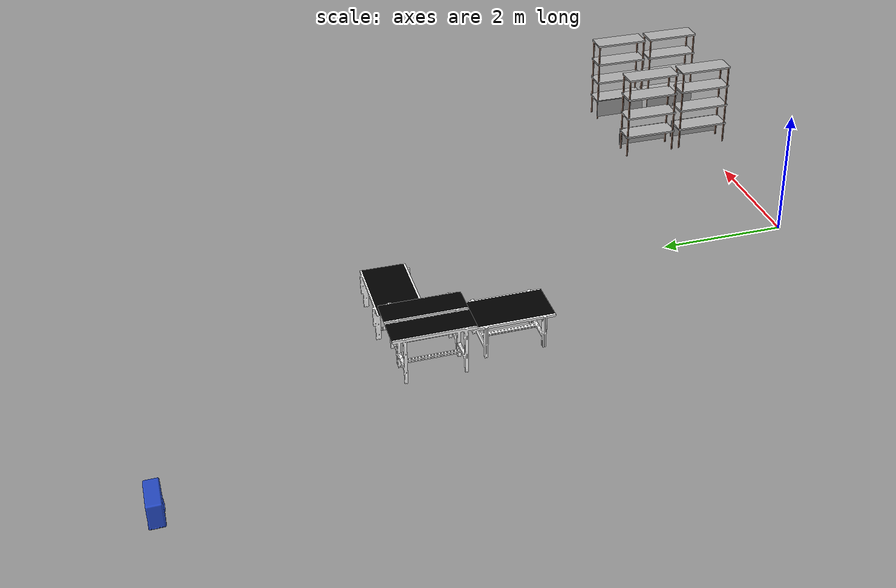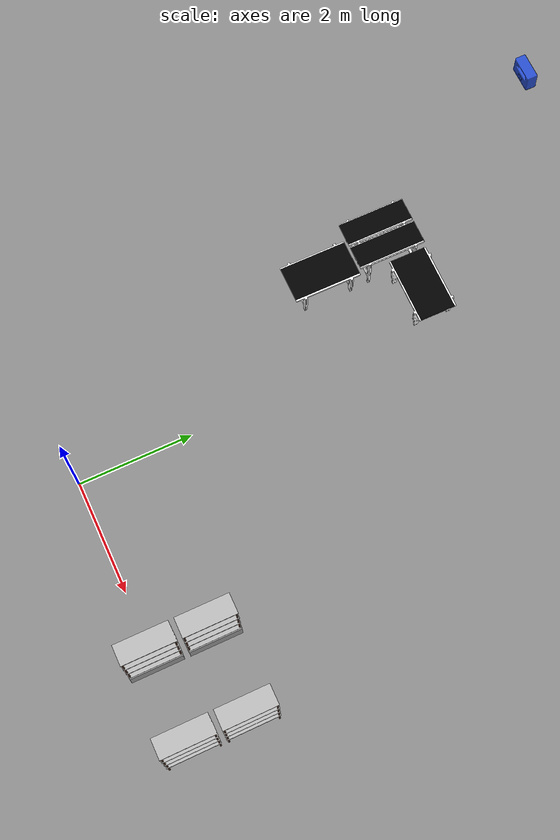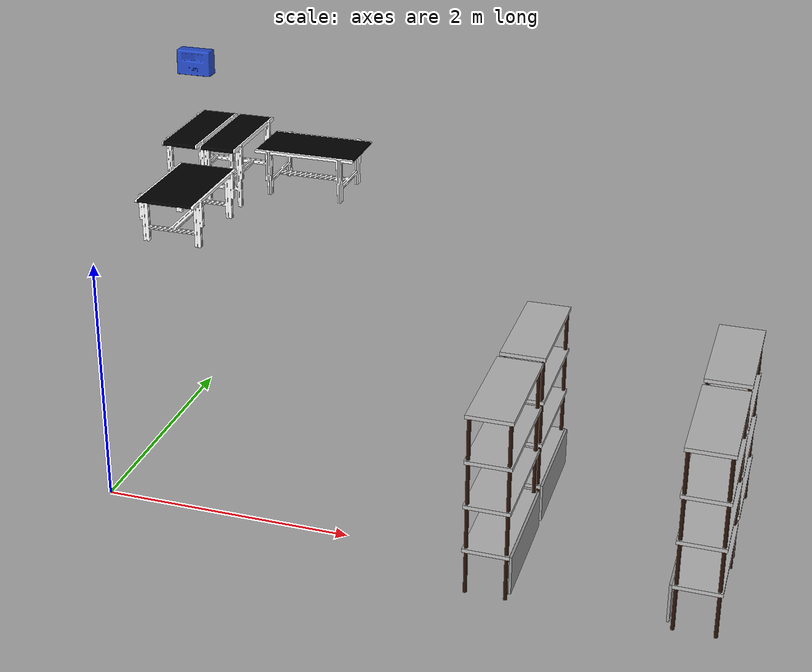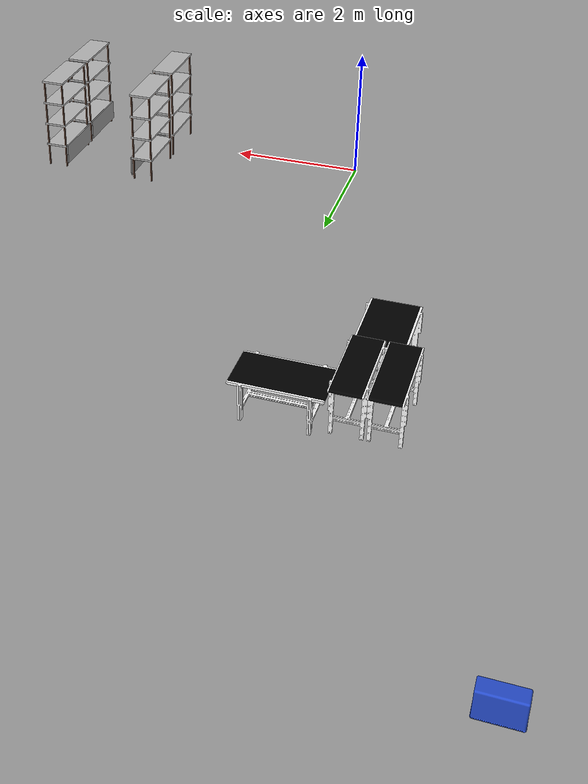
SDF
<sdf version="1.7">
 <world name="default">
  <model name="rack_7">
   <link name="link">
    <inertial>
     <mass>0.1</mass>
     <inertia><ixx>0.01857</ixx><ixy>0</ixy><ixz>0</ixz><iyy>0.015598</iyy><iyz>0</iyz><izz>0.00305</izz></inertia>
    </inertial>
    <visual name="visual1">
     <cast_shadows>0</cast_shadows>
     <geometry><mesh><uri>model://rack/meshes/rack.dae</uri></mesh></geometry>
     <material>
      <shader type="pixel"><normal_map>__default__</normal_map></shader>
      <emissive>0 0 0 1</emissive>
     </material>
    </visual>
    <visual name="visual_2">
     <cast_shadows>0</cast_shadows>
     <geometry><box><size>0.02 0.9 0.31</size></box></geometry>
     <material>
      <lighting>1</lighting>
      <script><uri>file://media/materials/scripts/gazebo.material</uri><name>Gazebo/Grey</name></script>
      <shader type="pixel"><normal_map>__default__</normal_map></shader>
      <ambient>0.3 0.3 0.3 1</ambient>
      <diffuse>0.7 0.7 0.7 1</diffuse>
      <specular>0.01 0.01 0.01 1</specular>
      <emissive>0 0 0 1</emissive>
     </material>
     <pose>-0.185 0 0.22 0 -0 0</pose>
    </visual>
    <collision name="collision_7">
     <pose>0 0 0.36 0 1.57 1.57</pose>
     <geometry><box><size>0.05 0.35 0.91</size></box></geometry>
     <surface>
      <friction>
       <ode><mu>1</mu><mu2>1</mu2><fdir1>0 0 0</fdir1><slip1>0</slip1><slip2>0</slip2></ode>
       <torsional>
        <coefficient>1</coefficient>
        <patch_radius>0</patch_radius>
        <surface_radius>0</surface_radius>
        <use_patch_radius>1</use_patch_radius>
        <ode><slip>0</slip></ode>
       </torsional>
      </friction>
      <bounce><restitution_coefficient>0</restitution_coefficient><threshold>1e+06</threshold></bounce>
      <contact>
       <collide_without_contact>0</collide_without_contact>
       <collide_without_contact_bitmask>1</collide_without_contact_bitmask>
       <collide_bitmask>1</collide_bitmask>
       <ode>
        <soft_cfm>0</soft_cfm>
        <soft_erp>0.2</soft_erp>
        <kp>1e+15</kp>
        <kd>1e+13</kd>
        <max_vel>0.01</max_vel>
        <min_depth>0</min_depth>
       </ode>
       <bullet>
        <split_impulse>1</split_impulse>
        <split_impulse_penetration_threshold>-0.01</split_impulse_penetration_threshold>
        <soft_cfm>0</soft_cfm>
        <soft_erp>0.2</soft_erp>
        <kp>1e+13</kp>
        <kd>1</kd>
       </bullet>
      </contact>
     </surface>
    </collision>
    <collision name="collision_6">
     <pose>0 0 0.725 0 1.57 1.57</pose>
     <geometry><box><size>0.05 0.35 0.91</size></box></geometry>
     <surface>
      <friction>
       <ode><mu>1</mu><mu2>1</mu2><fdir1>0 0 0</fdir1><slip1>0</slip1><slip2>0</slip2></ode>
       <torsional>
        <coefficient>1</coefficient>
        <patch_radius>0</patch_radius>
        <surface_radius>0</surface_radius>
        <use_patch_radius>1</use_patch_radius>
        <ode><slip>0</slip></ode>
       </torsional>
      </friction>
      <bounce><restitution_coefficient>0</restitution_coefficient><threshold>1e+06</threshold></bounce>
      <contact>
       <collide_without_contact>0</collide_without_contact>
       <collide_without_contact_bitmask>1</collide_without_contact_bitmask>
       <collide_bitmask>1</collide_bitmask>
       <ode>
        <soft_cfm>0</soft_cfm>
        <soft_erp>0.2</soft_erp>
        <kp>1e+15</kp>
        <kd>1e+13</kd>
        <max_vel>0.01</max_vel>
        <min_depth>0</min_depth>
       </ode>
       <bullet>
        <split_impulse>1</split_impulse>
        <split_impulse_penetration_threshold>-0.01</split_impulse_penetration_threshold>
        <soft_cfm>0</soft_cfm>
        <soft_erp>0.2</soft_erp>
        <kp>1e+13</kp>
        <kd>1</kd>
       </bullet>
      </contact>
     </surface>
    </collision>
    <collision name="collision_5">
     <pose>0 0 1.09 0 1.57 1.57</pose>
     <geometry><box><size>0.05 0.35 0.91</size></box></geometry>
     <surface>
      <friction>
       <ode><mu>1</mu><mu2>1</mu2><fdir1>0 0 0</fdir1><slip1>0</slip1><slip2>0</slip2></ode>
       <torsional>
        <coefficient>1</coefficient>
        <patch_radius>0</patch_radius>
        <surface_radius>0</surface_radius>
        <use_patch_radius>1</use_patch_radius>
        <ode><slip>0</slip></ode>
       </torsional>
      </friction>
      <bounce><restitution_coefficient>0</restitution_coefficient><threshold>1e+06</threshold></bounce>
      <contact>
       <collide_without_contact>0</collide_without_contact>
       <collide_without_contact_bitmask>1</collide_without_contact_bitmask>
       <collide_bitmask>1</collide_bitmask>
       <ode>
        <soft_cfm>0</soft_cfm>
        <soft_erp>0.2</soft_erp>
        <kp>1e+15</kp>
        <kd>1e+13</kd>
        <max_vel>0.01</max_vel>
        <min_depth>0</min_depth>
       </ode>
       <bullet>
        <split_impulse>1</split_impulse>
        <split_impulse_penetration_threshold>-0.01</split_impulse_penetration_threshold>
        <soft_cfm>0</soft_cfm>
        <soft_erp>0.2</soft_erp>
        <kp>1e+13</kp>
        <kd>1</kd>
       </bullet>
      </contact>
     </surface>
    </collision>
    <collision name="collision_3">
     <pose>0 0 1.455 0 1.57 1.57</pose>
     <geometry><box><size>0.05 0.35 0.91</size></box></geometry>
     <surface>
      <friction>
       <ode><mu>1</mu><mu2>1</mu2><fdir1>0 0 0</fdir1><slip1>0</slip1><slip2>0</slip2></ode>
       <torsional>
        <coefficient>1</coefficient>
        <patch_radius>0</patch_radius>
        <surface_radius>0</surface_radius>
        <use_patch_radius>1</use_patch_radius>
        <ode><slip>0</slip></ode>
       </torsional>
      </friction>
      <bounce><restitution_coefficient>0</restitution_coefficient><threshold>1e+06</threshold></bounce>
      <contact>
       <collide_without_contact>0</collide_without_contact>
       <collide_without_contact_bitmask>1</collide_without_contact_bitmask>
       <collide_bitmask>1</collide_bitmask>
       <ode>
        <soft_cfm>0</soft_cfm>
        <soft_erp>0.2</soft_erp>
        <kp>1e+15</kp>
        <kd>1e+13</kd>
        <max_vel>0.01</max_vel>
        <min_depth>0</min_depth>
       </ode>
       <bullet>
        <split_impulse>1</split_impulse>
        <split_impulse_penetration_threshold>-0.01</split_impulse_penetration_threshold>
        <soft_cfm>0</soft_cfm>
        <soft_erp>0.2</soft_erp>
        <kp>1e+13</kp>
        <kd>1</kd>
       </bullet>
      </contact>
     </surface>
    </collision>
    <collision name="collision_1">
     <pose>0 0.43 0.73 0 -0 1.57</pose>
     <geometry><box><size>0.05 0.36 1.46</size></box></geometry>
     <surface>
      <friction>
       <ode><mu>1</mu><mu2>1</mu2><fdir1>0 0 0</fdir1><slip1>0</slip1><slip2>0</slip2></ode>
       <torsional>
        <coefficient>1</coefficient>
        <patch_radius>0</patch_radius>
        <surface_radius>0</surface_radius>
        <use_patch_radius>1</use_patch_radius>
        <ode><slip>0</slip></ode>
       </torsional>
      </friction>
      <bounce><restitution_coefficient>0</restitution_coefficient><threshold>1e+06</threshold></bounce>
      <contact>
       <collide_without_contact>0</collide_without_contact>
       <collide_without_contact_bitmask>1</collide_without_contact_bitmask>
       <collide_bitmask>1</collide_bitmask>
       <ode>
        <soft_cfm>0</soft_cfm>
        <soft_erp>0.2</soft_erp>
        <kp>1e+15</kp>
        <kd>1e+13</kd>
        <max_vel>0.01</max_vel>
        <min_depth>0</min_depth>
       </ode>
       <bullet>
        <split_impulse>1</split_impulse>
        <split_impulse_penetration_threshold>-0.01</split_impulse_penetration_threshold>
        <soft_cfm>0</soft_cfm>
        <soft_erp>0.2</soft_erp>
        <kp>1e+13</kp>
        <kd>1</kd>
       </bullet>
      </contact>
     </surface>
    </collision>
    <collision name="collision_2">
     <pose>0 -0.43 0.73 0 -0 1.57</pose>
     <geometry><box><size>0.05 0.36 1.46</size></box></geometry>
     <surface>
      <friction>
       <ode><mu>1</mu><mu2>1</mu2><fdir1>0 0 0</fdir1><slip1>0</slip1><slip2>0</slip2></ode>
       <torsional>
        <coefficient>1</coefficient>
        <patch_radius>0</patch_radius>
        <surface_radius>0</surface_radius>
        <use_patch_radius>1</use_patch_radius>
        <ode><slip>0</slip></ode>
       </torsional>
      </friction>
      <bounce><restitution_coefficient>0</restitution_coefficient><threshold>1e+06</threshold></bounce>
      <contact>
       <collide_without_contact>0</collide_without_contact>
       <collide_without_contact_bitmask>1</collide_without_contact_bitmask>
       <collide_bitmask>1</collide_bitmask>
       <ode>
        <soft_cfm>0</soft_cfm>
        <soft_erp>0.2</soft_erp>
        <kp>1e+15</kp>
        <kd>1e+13</kd>
        <max_vel>0.01</max_vel>
        <min_depth>0</min_depth>
       </ode>
       <bullet>
        <split_impulse>1</split_impulse>
        <split_impulse_penetration_threshold>-0.01</split_impulse_penetration_threshold>
        <soft_cfm>0</soft_cfm>
        <soft_erp>0.2</soft_erp>
        <kp>1e+13</kp>
        <kd>1</kd>
       </bullet>
      </contact>
     </surface>
    </collision>
    <collision name="collision">
     <pose>-0.185 0 0.22 0 -0 0</pose>
     <geometry><box><size>0.02 0.9 0.31</size></box></geometry>
     <surface>
      <friction>
       <ode><mu>1</mu><mu2>1</mu2><fdir1>0 0 0</fdir1><slip1>0</slip1><slip2>0</slip2></ode>
       <torsional>
        <coefficient>1</coefficient>
        <patch_radius>0</patch_radius>
        <surface_radius>0</surface_radius>
        <use_patch_radius>1</use_patch_radius>
        <ode><slip>0</slip></ode>
       </torsional>
      </friction>
      <bounce><restitution_coefficient>0</restitution_coefficient><threshold>1e+06</threshold></bounce>
      <contact>
       <collide_without_contact>0</collide_without_contact>
       <collide_without_contact_bitmask>1</collide_without_contact_bitmask>
       <collide_bitmask>1</collide_bitmask>
       <ode>
        <soft_cfm>0</soft_cfm>
        <soft_erp>0.2</soft_erp>
        <kp>1e+15</kp>
        <kd>1e+13</kd>
        <max_vel>0.01</max_vel>
        <min_depth>0</min_depth>
       </ode>
       <bullet>
        <split_impulse>1</split_impulse>
        <split_impulse_penetration_threshold>-0.01</split_impulse_penetration_threshold>
        <soft_cfm>0</soft_cfm>
        <soft_erp>0.2</soft_erp>
        <kp>1e+13</kp>
        <kd>1</kd>
       </bullet>
      </contact>
     </surface>
    </collision>
   </link>
   <static>0</static>
   <pose>4.7 1 0.028864 0 -0 0</pose>
  </model>
  <model name="rack_8">
   <link name="link">
    <inertial>
     <mass>0.1</mass>
     <inertia><ixx>0.01857</ixx><ixy>0</ixy><ixz>0</ixz><iyy>0.015598</iyy><iyz>0</iyz><izz>0.00305</izz></inertia>
    </inertial>
    <visual name="visual1">
     <cast_shadows>0</cast_shadows>
     <geometry><mesh><uri>model://rack/meshes/rack.dae</uri></mesh></geometry>
     <material>
      <shader type="pixel"><normal_map>__default__</normal_map></shader>
      <emissive>0 0 0 1</emissive>
     </material>
    </visual>
    <visual name="visual_2">
     <cast_shadows>0</cast_shadows>
     <geometry><box><size>0.02 0.9 0.31</size></box></geometry>
     <material>
      <lighting>1</lighting>
      <script><uri>file://media/materials/scripts/gazebo.material</uri><name>Gazebo/Grey</name></script>
      <shader type="pixel"><normal_map>__default__</normal_map></shader>
      <ambient>0.3 0.3 0.3 1</ambient>
      <diffuse>0.7 0.7 0.7 1</diffuse>
      <specular>0.01 0.01 0.01 1</specular>
      <emissive>0 0 0 1</emissive>
     </material>
     <pose>-0.185 0 0.22 0 -0 0</pose>
    </visual>
    <collision name="collision_7">
     <pose>0 0 0.36 0 1.57 1.57</pose>
     <geometry><box><size>0.05 0.35 0.91</size></box></geometry>
     <surface>
      <friction>
       <ode><mu>1</mu><mu2>1</mu2><fdir1>0 0 0</fdir1><slip1>0</slip1><slip2>0</slip2></ode>
       <torsional>
        <coefficient>1</coefficient>
        <patch_radius>0</patch_radius>
        <surface_radius>0</surface_radius>
        <use_patch_radius>1</use_patch_radius>
        <ode><slip>0</slip></ode>
       </torsional>
      </friction>
      <bounce><restitution_coefficient>0</restitution_coefficient><threshold>1e+06</threshold></bounce>
      <contact>
       <collide_without_contact>0</collide_without_contact>
       <collide_without_contact_bitmask>1</collide_without_contact_bitmask>
       <collide_bitmask>1</collide_bitmask>
       <ode>
        <soft_cfm>0</soft_cfm>
        <soft_erp>0.2</soft_erp>
        <kp>1e+15</kp>
        <kd>1e+13</kd>
        <max_vel>0.01</max_vel>
        <min_depth>0</min_depth>
       </ode>
       <bullet>
        <split_impulse>1</split_impulse>
        <split_impulse_penetration_threshold>-0.01</split_impulse_penetration_threshold>
        <soft_cfm>0</soft_cfm>
        <soft_erp>0.2</soft_erp>
        <kp>1e+13</kp>
        <kd>1</kd>
       </bullet>
      </contact>
     </surface>
    </collision>
    <collision name="collision_6">
     <pose>0 0 0.725 0 1.57 1.57</pose>
     <geometry><box><size>0.05 0.35 0.91</size></box></geometry>
     <surface>
      <friction>
       <ode><mu>1</mu><mu2>1</mu2><fdir1>0 0 0</fdir1><slip1>0</slip1><slip2>0</slip2></ode>
       <torsional>
        <coefficient>1</coefficient>
        <patch_radius>0</patch_radius>
        <surface_radius>0</surface_radius>
        <use_patch_radius>1</use_patch_radius>
        <ode><slip>0</slip></ode>
       </torsional>
      </friction>
      <bounce><restitution_coefficient>0</restitution_coefficient><threshold>1e+06</threshold></bounce>
      <contact>
       <collide_without_contact>0</collide_without_contact>
       <collide_without_contact_bitmask>1</collide_without_contact_bitmask>
       <collide_bitmask>1</collide_bitmask>
       <ode>
        <soft_cfm>0</soft_cfm>
        <soft_erp>0.2</soft_erp>
        <kp>1e+15</kp>
        <kd>1e+13</kd>
        <max_vel>0.01</max_vel>
        <min_depth>0</min_depth>
       </ode>
       <bullet>
        <split_impulse>1</split_impulse>
        <split_impulse_penetration_threshold>-0.01</split_impulse_penetration_threshold>
        <soft_cfm>0</soft_cfm>
        <soft_erp>0.2</soft_erp>
        <kp>1e+13</kp>
        <kd>1</kd>
       </bullet>
      </contact>
     </surface>
    </collision>
    <collision name="collision_5">
     <pose>0 0 1.09 0 1.57 1.57</pose>
     <geometry><box><size>0.05 0.35 0.91</size></box></geometry>
     <surface>
      <friction>
       <ode><mu>1</mu><mu2>1</mu2><fdir1>0 0 0</fdir1><slip1>0</slip1><slip2>0</slip2></ode>
       <torsional>
        <coefficient>1</coefficient>
        <patch_radius>0</patch_radius>
        <surface_radius>0</surface_radius>
        <use_patch_radius>1</use_patch_radius>
        <ode><slip>0</slip></ode>
       </torsional>
      </friction>
      <bounce><restitution_coefficient>0</restitution_coefficient><threshold>1e+06</threshold></bounce>
      <contact>
       <collide_without_contact>0</collide_without_contact>
       <collide_without_contact_bitmask>1</collide_without_contact_bitmask>
       <collide_bitmask>1</collide_bitmask>
       <ode>
        <soft_cfm>0</soft_cfm>
        <soft_erp>0.2</soft_erp>
        <kp>1e+15</kp>
        <kd>1e+13</kd>
        <max_vel>0.01</max_vel>
        <min_depth>0</min_depth>
       </ode>
       <bullet>
        <split_impulse>1</split_impulse>
        <split_impulse_penetration_threshold>-0.01</split_impulse_penetration_threshold>
        <soft_cfm>0</soft_cfm>
        <soft_erp>0.2</soft_erp>
        <kp>1e+13</kp>
        <kd>1</kd>
       </bullet>
      </contact>
     </surface>
    </collision>
    <collision name="collision_3">
     <pose>0 0 1.455 0 1.57 1.57</pose>
     <geometry><box><size>0.05 0.35 0.91</size></box></geometry>
     <surface>
      <friction>
       <ode><mu>1</mu><mu2>1</mu2><fdir1>0 0 0</fdir1><slip1>0</slip1><slip2>0</slip2></ode>
       <torsional>
        <coefficient>1</coefficient>
        <patch_radius>0</patch_radius>
        <surface_radius>0</surface_radius>
        <use_patch_radius>1</use_patch_radius>
        <ode><slip>0</slip></ode>
       </torsional>
      </friction>
      <bounce><restitution_coefficient>0</restitution_coefficient><threshold>1e+06</threshold></bounce>
      <contact>
       <collide_without_contact>0</collide_without_contact>
       <collide_without_contact_bitmask>1</collide_without_contact_bitmask>
       <collide_bitmask>1</collide_bitmask>
       <ode>
        <soft_cfm>0</soft_cfm>
        <soft_erp>0.2</soft_erp>
        <kp>1e+15</kp>
        <kd>1e+13</kd>
        <max_vel>0.01</max_vel>
        <min_depth>0</min_depth>
       </ode>
       <bullet>
        <split_impulse>1</split_impulse>
        <split_impulse_penetration_threshold>-0.01</split_impulse_penetration_threshold>
        <soft_cfm>0</soft_cfm>
        <soft_erp>0.2</soft_erp>
        <kp>1e+13</kp>
        <kd>1</kd>
       </bullet>
      </contact>
     </surface>
    </collision>
    <collision name="collision_1">
     <pose>0 0.43 0.73 0 -0 1.57</pose>
     <geometry><box><size>0.05 0.36 1.46</size></box></geometry>
     <surface>
      <friction>
       <ode><mu>1</mu><mu2>1</mu2><fdir1>0 0 0</fdir1><slip1>0</slip1><slip2>0</slip2></ode>
       <torsional>
        <coefficient>1</coefficient>
        <patch_radius>0</patch_radius>
        <surface_radius>0</surface_radius>
        <use_patch_radius>1</use_patch_radius>
        <ode><slip>0</slip></ode>
       </torsional>
      </friction>
      <bounce><restitution_coefficient>0</restitution_coefficient><threshold>1e+06</threshold></bounce>
      <contact>
       <collide_without_contact>0</collide_without_contact>
       <collide_without_contact_bitmask>1</collide_without_contact_bitmask>
       <collide_bitmask>1</collide_bitmask>
       <ode>
        <soft_cfm>0</soft_cfm>
        <soft_erp>0.2</soft_erp>
        <kp>1e+15</kp>
        <kd>1e+13</kd>
        <max_vel>0.01</max_vel>
        <min_depth>0</min_depth>
       </ode>
       <bullet>
        <split_impulse>1</split_impulse>
        <split_impulse_penetration_threshold>-0.01</split_impulse_penetration_threshold>
        <soft_cfm>0</soft_cfm>
        <soft_erp>0.2</soft_erp>
        <kp>1e+13</kp>
        <kd>1</kd>
       </bullet>
      </contact>
     </surface>
    </collision>
    <collision name="collision_2">
     <pose>0 -0.43 0.73 0 -0 1.57</pose>
     <geometry><box><size>0.05 0.36 1.46</size></box></geometry>
     <surface>
      <friction>
       <ode><mu>1</mu><mu2>1</mu2><fdir1>0 0 0</fdir1><slip1>0</slip1><slip2>0</slip2></ode>
       <torsional>
        <coefficient>1</coefficient>
        <patch_radius>0</patch_radius>
        <surface_radius>0</surface_radius>
        <use_patch_radius>1</use_patch_radius>
        <ode><slip>0</slip></ode>
       </torsional>
      </friction>
      <bounce><restitution_coefficient>0</restitution_coefficient><threshold>1e+06</threshold></bounce>
      <contact>
       <collide_without_contact>0</collide_without_contact>
       <collide_without_contact_bitmask>1</collide_without_contact_bitmask>
       <collide_bitmask>1</collide_bitmask>
       <ode>
        <soft_cfm>0</soft_cfm>
        <soft_erp>0.2</soft_erp>
        <kp>1e+15</kp>
        <kd>1e+13</kd>
        <max_vel>0.01</max_vel>
        <min_depth>0</min_depth>
       </ode>
       <bullet>
        <split_impulse>1</split_impulse>
        <split_impulse_penetration_threshold>-0.01</split_impulse_penetration_threshold>
        <soft_cfm>0</soft_cfm>
        <soft_erp>0.2</soft_erp>
        <kp>1e+13</kp>
        <kd>1</kd>
       </bullet>
      </contact>
     </surface>
    </collision>
    <collision name="collision">
     <pose>-0.185 0 0.22 0 -0 0</pose>
     <geometry><box><size>0.02 0.9 0.31</size></box></geometry>
     <surface>
      <friction>
       <ode><mu>1</mu><mu2>1</mu2><fdir1>0 0 0</fdir1><slip1>0</slip1><slip2>0</slip2></ode>
       <torsional>
        <coefficient>1</coefficient>
        <patch_radius>0</patch_radius>
        <surface_radius>0</surface_radius>
        <use_patch_radius>1</use_patch_radius>
        <ode><slip>0</slip></ode>
       </torsional>
      </friction>
      <bounce><restitution_coefficient>0</restitution_coefficient><threshold>1e+06</threshold></bounce>
      <contact>
       <collide_without_contact>0</collide_without_contact>
       <collide_without_contact_bitmask>1</collide_without_contact_bitmask>
       <collide_bitmask>1</collide_bitmask>
       <ode>
        <soft_cfm>0</soft_cfm>
        <soft_erp>0.2</soft_erp>
        <kp>1e+15</kp>
        <kd>1e+13</kd>
        <max_vel>0.01</max_vel>
        <min_depth>0</min_depth>
       </ode>
       <bullet>
        <split_impulse>1</split_impulse>
        <split_impulse_penetration_threshold>-0.01</split_impulse_penetration_threshold>
        <soft_cfm>0</soft_cfm>
        <soft_erp>0.2</soft_erp>
        <kp>1e+13</kp>
        <kd>1</kd>
       </bullet>
      </contact>
     </surface>
    </collision>
   </link>
   <static>0</static>
   <pose>4.7 -0 0.030078 0 -0 0</pose>
  </model>
  <model name="rack_11">
   <link name="link">
    <inertial>
     <mass>0.1</mass>
     <inertia><ixx>0.01857</ixx><ixy>0</ixy><ixz>0</ixz><iyy>0.015598</iyy><iyz>0</iyz><izz>0.00305</izz></inertia>
    </inertial>
    <visual name="visual1">
     <cast_shadows>0</cast_shadows>
     <geometry><mesh><uri>model://rack/meshes/rack.dae</uri></mesh></geometry>
     <material>
      <shader type="pixel"><normal_map>__default__</normal_map></shader>
      <emissive>0 0 0 1</emissive>
     </material>
    </visual>
    <visual name="visual_2">
     <cast_shadows>0</cast_shadows>
     <geometry><box><size>0.02 0.9 0.31</size></box></geometry>
     <material>
      <lighting>1</lighting>
      <script><uri>file://media/materials/scripts/gazebo.material</uri><name>Gazebo/Grey</name></script>
      <shader type="pixel"><normal_map>__default__</normal_map></shader>
      <ambient>0.3 0.3 0.3 1</ambient>
      <diffuse>0.7 0.7 0.7 1</diffuse>
      <specular>0.01 0.01 0.01 1</specular>
      <emissive>0 0 0 1</emissive>
     </material>
     <pose>-0.185 0 0.22 0 -0 0</pose>
    </visual>
    <collision name="collision_7">
     <pose>0 0 0.36 0 1.57 1.57</pose>
     <geometry><box><size>0.05 0.35 0.91</size></box></geometry>
     <surface>
      <friction>
       <ode><mu>1</mu><mu2>1</mu2><fdir1>0 0 0</fdir1><slip1>0</slip1><slip2>0</slip2></ode>
       <torsional>
        <coefficient>1</coefficient>
        <patch_radius>0</patch_radius>
        <surface_radius>0</surface_radius>
        <use_patch_radius>1</use_patch_radius>
        <ode><slip>0</slip></ode>
       </torsional>
      </friction>
      <bounce><restitution_coefficient>0</restitution_coefficient><threshold>1e+06</threshold></bounce>
      <contact>
       <collide_without_contact>0</collide_without_contact>
       <collide_without_contact_bitmask>1</collide_without_contact_bitmask>
       <collide_bitmask>1</collide_bitmask>
       <ode>
        <soft_cfm>0</soft_cfm>
        <soft_erp>0.2</soft_erp>
        <kp>1e+15</kp>
        <kd>1e+13</kd>
        <max_vel>0.01</max_vel>
        <min_depth>0</min_depth>
       </ode>
       <bullet>
        <split_impulse>1</split_impulse>
        <split_impulse_penetration_threshold>-0.01</split_impulse_penetration_threshold>
        <soft_cfm>0</soft_cfm>
        <soft_erp>0.2</soft_erp>
        <kp>1e+13</kp>
        <kd>1</kd>
       </bullet>
      </contact>
     </surface>
    </collision>
    <collision name="collision_6">
     <pose>0 0 0.725 0 1.57 1.57</pose>
     <geometry><box><size>0.05 0.35 0.91</size></box></geometry>
     <surface>
      <friction>
       <ode><mu>1</mu><mu2>1</mu2><fdir1>0 0 0</fdir1><slip1>0</slip1><slip2>0</slip2></ode>
       <torsional>
        <coefficient>1</coefficient>
        <patch_radius>0</patch_radius>
        <surface_radius>0</surface_radius>
        <use_patch_radius>1</use_patch_radius>
        <ode><slip>0</slip></ode>
       </torsional>
      </friction>
      <bounce><restitution_coefficient>0</restitution_coefficient><threshold>1e+06</threshold></bounce>
      <contact>
       <collide_without_contact>0</collide_without_contact>
       <collide_without_contact_bitmask>1</collide_without_contact_bitmask>
       <collide_bitmask>1</collide_bitmask>
       <ode>
        <soft_cfm>0</soft_cfm>
        <soft_erp>0.2</soft_erp>
        <kp>1e+15</kp>
        <kd>1e+13</kd>
        <max_vel>0.01</max_vel>
        <min_depth>0</min_depth>
       </ode>
       <bullet>
        <split_impulse>1</split_impulse>
        <split_impulse_penetration_threshold>-0.01</split_impulse_penetration_threshold>
        <soft_cfm>0</soft_cfm>
        <soft_erp>0.2</soft_erp>
        <kp>1e+13</kp>
        <kd>1</kd>
       </bullet>
      </contact>
     </surface>
    </collision>
    <collision name="collision_5">
     <pose>0 0 1.09 0 1.57 1.57</pose>
     <geometry><box><size>0.05 0.35 0.91</size></box></geometry>
     <surface>
      <friction>
       <ode><mu>1</mu><mu2>1</mu2><fdir1>0 0 0</fdir1><slip1>0</slip1><slip2>0</slip2></ode>
       <torsional>
        <coefficient>1</coefficient>
        <patch_radius>0</patch_radius>
        <surface_radius>0</surface_radius>
        <use_patch_radius>1</use_patch_radius>
        <ode><slip>0</slip></ode>
       </torsional>
      </friction>
      <bounce><restitution_coefficient>0</restitution_coefficient><threshold>1e+06</threshold></bounce>
      <contact>
       <collide_without_contact>0</collide_without_contact>
       <collide_without_contact_bitmask>1</collide_without_contact_bitmask>
       <collide_bitmask>1</collide_bitmask>
       <ode>
        <soft_cfm>0</soft_cfm>
        <soft_erp>0.2</soft_erp>
        <kp>1e+15</kp>
        <kd>1e+13</kd>
        <max_vel>0.01</max_vel>
        <min_depth>0</min_depth>
       </ode>
       <bullet>
        <split_impulse>1</split_impulse>
        <split_impulse_penetration_threshold>-0.01</split_impulse_penetration_threshold>
        <soft_cfm>0</soft_cfm>
        <soft_erp>0.2</soft_erp>
        <kp>1e+13</kp>
        <kd>1</kd>
       </bullet>
      </contact>
     </surface>
    </collision>
    <collision name="collision_3">
     <pose>0 0 1.455 0 1.57 1.57</pose>
     <geometry><box><size>0.05 0.35 0.91</size></box></geometry>
     <surface>
      <friction>
       <ode><mu>1</mu><mu2>1</mu2><fdir1>0 0 0</fdir1><slip1>0</slip1><slip2>0</slip2></ode>
       <torsional>
        <coefficient>1</coefficient>
        <patch_radius>0</patch_radius>
        <surface_radius>0</surface_radius>
        <use_patch_radius>1</use_patch_radius>
        <ode><slip>0</slip></ode>
       </torsional>
      </friction>
      <bounce><restitution_coefficient>0</restitution_coefficient><threshold>1e+06</threshold></bounce>
      <contact>
       <collide_without_contact>0</collide_without_contact>
       <collide_without_contact_bitmask>1</collide_without_contact_bitmask>
       <collide_bitmask>1</collide_bitmask>
       <ode>
        <soft_cfm>0</soft_cfm>
        <soft_erp>0.2</soft_erp>
        <kp>1e+15</kp>
        <kd>1e+13</kd>
        <max_vel>0.01</max_vel>
        <min_depth>0</min_depth>
       </ode>
       <bullet>
        <split_impulse>1</split_impulse>
        <split_impulse_penetration_threshold>-0.01</split_impulse_penetration_threshold>
        <soft_cfm>0</soft_cfm>
        <soft_erp>0.2</soft_erp>
        <kp>1e+13</kp>
        <kd>1</kd>
       </bullet>
      </contact>
     </surface>
    </collision>
    <collision name="collision_1">
     <pose>0 0.43 0.73 0 -0 1.57</pose>
     <geometry><box><size>0.05 0.36 1.46</size></box></geometry>
     <surface>
      <friction>
       <ode><mu>1</mu><mu2>1</mu2><fdir1>0 0 0</fdir1><slip1>0</slip1><slip2>0</slip2></ode>
       <torsional>
        <coefficient>1</coefficient>
        <patch_radius>0</patch_radius>
        <surface_radius>0</surface_radius>
        <use_patch_radius>1</use_patch_radius>
        <ode><slip>0</slip></ode>
       </torsional>
      </friction>
      <bounce><restitution_coefficient>0</restitution_coefficient><threshold>1e+06</threshold></bounce>
      <contact>
       <collide_without_contact>0</collide_without_contact>
       <collide_without_contact_bitmask>1</collide_without_contact_bitmask>
       <collide_bitmask>1</collide_bitmask>
       <ode>
        <soft_cfm>0</soft_cfm>
        <soft_erp>0.2</soft_erp>
        <kp>1e+15</kp>
        <kd>1e+13</kd>
        <max_vel>0.01</max_vel>
        <min_depth>0</min_depth>
       </ode>
       <bullet>
        <split_impulse>1</split_impulse>
        <split_impulse_penetration_threshold>-0.01</split_impulse_penetration_threshold>
        <soft_cfm>0</soft_cfm>
        <soft_erp>0.2</soft_erp>
        <kp>1e+13</kp>
        <kd>1</kd>
       </bullet>
      </contact>
     </surface>
    </collision>
    <collision name="collision_2">
     <pose>0 -0.43 0.73 0 -0 1.57</pose>
     <geometry><box><size>0.05 0.36 1.46</size></box></geometry>
     <surface>
      <friction>
       <ode><mu>1</mu><mu2>1</mu2><fdir1>0 0 0</fdir1><slip1>0</slip1><slip2>0</slip2></ode>
       <torsional>
        <coefficient>1</coefficient>
        <patch_radius>0</patch_radius>
        <surface_radius>0</surface_radius>
        <use_patch_radius>1</use_patch_radius>
        <ode><slip>0</slip></ode>
       </torsional>
      </friction>
      <bounce><restitution_coefficient>0</restitution_coefficient><threshold>1e+06</threshold></bounce>
      <contact>
       <collide_without_contact>0</collide_without_contact>
       <collide_without_contact_bitmask>1</collide_without_contact_bitmask>
       <collide_bitmask>1</collide_bitmask>
       <ode>
        <soft_cfm>0</soft_cfm>
        <soft_erp>0.2</soft_erp>
        <kp>1e+15</kp>
        <kd>1e+13</kd>
        <max_vel>0.01</max_vel>
        <min_depth>0</min_depth>
       </ode>
       <bullet>
        <split_impulse>1</split_impulse>
        <split_impulse_penetration_threshold>-0.01</split_impulse_penetration_threshold>
        <soft_cfm>0</soft_cfm>
        <soft_erp>0.2</soft_erp>
        <kp>1e+13</kp>
        <kd>1</kd>
       </bullet>
      </contact>
     </surface>
    </collision>
    <collision name="collision">
     <pose>-0.185 0 0.22 0 -0 0</pose>
     <geometry><box><size>0.02 0.9 0.31</size></box></geometry>
     <surface>
      <friction>
       <ode><mu>1</mu><mu2>1</mu2><fdir1>0 0 0</fdir1><slip1>0</slip1><slip2>0</slip2></ode>
       <torsional>
        <coefficient>1</coefficient>
        <patch_radius>0</patch_radius>
        <surface_radius>0</surface_radius>
        <use_patch_radius>1</use_patch_radius>
        <ode><slip>0</slip></ode>
       </torsional>
      </friction>
      <bounce><restitution_coefficient>0</restitution_coefficient><threshold>1e+06</threshold></bounce>
      <contact>
       <collide_without_contact>0</collide_without_contact>
       <collide_without_contact_bitmask>1</collide_without_contact_bitmask>
       <collide_bitmask>1</collide_bitmask>
       <ode>
        <soft_cfm>0</soft_cfm>
        <soft_erp>0.2</soft_erp>
        <kp>1e+15</kp>
        <kd>1e+13</kd>
        <max_vel>0.01</max_vel>
        <min_depth>0</min_depth>
       </ode>
       <bullet>
        <split_impulse>1</split_impulse>
        <split_impulse_penetration_threshold>-0.01</split_impulse_penetration_threshold>
        <soft_cfm>0</soft_cfm>
        <soft_erp>0.2</soft_erp>
        <kp>1e+13</kp>
        <kd>1</kd>
       </bullet>
      </contact>
     </surface>
    </collision>
   </link>
   <static>0</static>
   <pose>3.2 1 0.003251 0 -0 3.14</pose>
  </model>
  <model name="rack_12">
   <link name="link">
    <inertial>
     <mass>0.1</mass>
     <inertia><ixx>0.01857</ixx><ixy>0</ixy><ixz>0</ixz><iyy>0.015598</iyy><iyz>0</iyz><izz>0.00305</izz></inertia>
    </inertial>
    <visual name="visual1">
     <cast_shadows>0</cast_shadows>
     <geometry><mesh><uri>model://rack/meshes/rack.dae</uri></mesh></geometry>
     <material>
      <shader type="pixel"><normal_map>__default__</normal_map></shader>
      <emissive>0 0 0 1</emissive>
     </material>
    </visual>
    <visual name="visual_2">
     <cast_shadows>0</cast_shadows>
     <geometry><box><size>0.02 0.9 0.31</size></box></geometry>
     <material>
      <lighting>1</lighting>
      <script><uri>file://media/materials/scripts/gazebo.material</uri><name>Gazebo/Grey</name></script>
      <shader type="pixel"><normal_map>__default__</normal_map></shader>
      <ambient>0.3 0.3 0.3 1</ambient>
      <diffuse>0.7 0.7 0.7 1</diffuse>
      <specular>0.01 0.01 0.01 1</specular>
      <emissive>0 0 0 1</emissive>
     </material>
     <pose>-0.185 0 0.22 0 -0 0</pose>
    </visual>
    <collision name="collision_7">
     <pose>0 0 0.36 0 1.57 1.57</pose>
     <geometry><box><size>0.05 0.35 0.91</size></box></geometry>
     <surface>
      <friction>
       <ode><mu>1</mu><mu2>1</mu2><fdir1>0 0 0</fdir1><slip1>0</slip1><slip2>0</slip2></ode>
       <torsional>
        <coefficient>1</coefficient>
        <patch_radius>0</patch_radius>
        <surface_radius>0</surface_radius>
        <use_patch_radius>1</use_patch_radius>
        <ode><slip>0</slip></ode>
       </torsional>
      </friction>
      <bounce><restitution_coefficient>0</restitution_coefficient><threshold>1e+06</threshold></bounce>
      <contact>
       <collide_without_contact>0</collide_without_contact>
       <collide_without_contact_bitmask>1</collide_without_contact_bitmask>
       <collide_bitmask>1</collide_bitmask>
       <ode>
        <soft_cfm>0</soft_cfm>
        <soft_erp>0.2</soft_erp>
        <kp>1e+15</kp>
        <kd>1e+13</kd>
        <max_vel>0.01</max_vel>
        <min_depth>0</min_depth>
       </ode>
       <bullet>
        <split_impulse>1</split_impulse>
        <split_impulse_penetration_threshold>-0.01</split_impulse_penetration_threshold>
        <soft_cfm>0</soft_cfm>
        <soft_erp>0.2</soft_erp>
        <kp>1e+13</kp>
        <kd>1</kd>
       </bullet>
      </contact>
     </surface>
    </collision>
    <collision name="collision_6">
     <pose>0 0 0.725 0 1.57 1.57</pose>
     <geometry><box><size>0.05 0.35 0.91</size></box></geometry>
     <surface>
      <friction>
       <ode><mu>1</mu><mu2>1</mu2><fdir1>0 0 0</fdir1><slip1>0</slip1><slip2>0</slip2></ode>
       <torsional>
        <coefficient>1</coefficient>
        <patch_radius>0</patch_radius>
        <surface_radius>0</surface_radius>
        <use_patch_radius>1</use_patch_radius>
        <ode><slip>0</slip></ode>
       </torsional>
      </friction>
      <bounce><restitution_coefficient>0</restitution_coefficient><threshold>1e+06</threshold></bounce>
      <contact>
       <collide_without_contact>0</collide_without_contact>
       <collide_without_contact_bitmask>1</collide_without_contact_bitmask>
       <collide_bitmask>1</collide_bitmask>
       <ode>
        <soft_cfm>0</soft_cfm>
        <soft_erp>0.2</soft_erp>
        <kp>1e+15</kp>
        <kd>1e+13</kd>
        <max_vel>0.01</max_vel>
        <min_depth>0</min_depth>
       </ode>
       <bullet>
        <split_impulse>1</split_impulse>
        <split_impulse_penetration_threshold>-0.01</split_impulse_penetration_threshold>
        <soft_cfm>0</soft_cfm>
        <soft_erp>0.2</soft_erp>
        <kp>1e+13</kp>
        <kd>1</kd>
       </bullet>
      </contact>
     </surface>
    </collision>
    <collision name="collision_5">
     <pose>0 0 1.09 0 1.57 1.57</pose>
     <geometry><box><size>0.05 0.35 0.91</size></box></geometry>
     <surface>
      <friction>
       <ode><mu>1</mu><mu2>1</mu2><fdir1>0 0 0</fdir1><slip1>0</slip1><slip2>0</slip2></ode>
       <torsional>
        <coefficient>1</coefficient>
        <patch_radius>0</patch_radius>
        <surface_radius>0</surface_radius>
        <use_patch_radius>1</use_patch_radius>
        <ode><slip>0</slip></ode>
       </torsional>
      </friction>
      <bounce><restitution_coefficient>0</restitution_coefficient><threshold>1e+06</threshold></bounce>
      <contact>
       <collide_without_contact>0</collide_without_contact>
       <collide_without_contact_bitmask>1</collide_without_contact_bitmask>
       <collide_bitmask>1</collide_bitmask>
       <ode>
        <soft_cfm>0</soft_cfm>
        <soft_erp>0.2</soft_erp>
        <kp>1e+15</kp>
        <kd>1e+13</kd>
        <max_vel>0.01</max_vel>
        <min_depth>0</min_depth>
       </ode>
       <bullet>
        <split_impulse>1</split_impulse>
        <split_impulse_penetration_threshold>-0.01</split_impulse_penetration_threshold>
        <soft_cfm>0</soft_cfm>
        <soft_erp>0.2</soft_erp>
        <kp>1e+13</kp>
        <kd>1</kd>
       </bullet>
      </contact>
     </surface>
    </collision>
    <collision name="collision_3">
     <pose>0 0 1.455 0 1.57 1.57</pose>
     <geometry><box><size>0.05 0.35 0.91</size></box></geometry>
     <surface>
      <friction>
       <ode><mu>1</mu><mu2>1</mu2><fdir1>0 0 0</fdir1><slip1>0</slip1><slip2>0</slip2></ode>
       <torsional>
        <coefficient>1</coefficient>
        <patch_radius>0</patch_radius>
        <surface_radius>0</surface_radius>
        <use_patch_radius>1</use_patch_radius>
        <ode><slip>0</slip></ode>
       </torsional>
      </friction>
      <bounce><restitution_coefficient>0</restitution_coefficient><threshold>1e+06</threshold></bounce>
      <contact>
       <collide_without_contact>0</collide_without_contact>
       <collide_without_contact_bitmask>1</collide_without_contact_bitmask>
       <collide_bitmask>1</collide_bitmask>
       <ode>
        <soft_cfm>0</soft_cfm>
        <soft_erp>0.2</soft_erp>
        <kp>1e+15</kp>
        <kd>1e+13</kd>
        <max_vel>0.01</max_vel>
        <min_depth>0</min_depth>
       </ode>
       <bullet>
        <split_impulse>1</split_impulse>
        <split_impulse_penetration_threshold>-0.01</split_impulse_penetration_threshold>
        <soft_cfm>0</soft_cfm>
        <soft_erp>0.2</soft_erp>
        <kp>1e+13</kp>
        <kd>1</kd>
       </bullet>
      </contact>
     </surface>
    </collision>
    <collision name="collision_1">
     <pose>0 0.43 0.73 0 -0 1.57</pose>
     <geometry><box><size>0.05 0.36 1.46</size></box></geometry>
     <surface>
      <friction>
       <ode><mu>1</mu><mu2>1</mu2><fdir1>0 0 0</fdir1><slip1>0</slip1><slip2>0</slip2></ode>
       <torsional>
        <coefficient>1</coefficient>
        <patch_radius>0</patch_radius>
        <surface_radius>0</surface_radius>
        <use_patch_radius>1</use_patch_radius>
        <ode><slip>0</slip></ode>
       </torsional>
      </friction>
      <bounce><restitution_coefficient>0</restitution_coefficient><threshold>1e+06</threshold></bounce>
      <contact>
       <collide_without_contact>0</collide_without_contact>
       <collide_without_contact_bitmask>1</collide_without_contact_bitmask>
       <collide_bitmask>1</collide_bitmask>
       <ode>
        <soft_cfm>0</soft_cfm>
        <soft_erp>0.2</soft_erp>
        <kp>1e+15</kp>
        <kd>1e+13</kd>
        <max_vel>0.01</max_vel>
        <min_depth>0</min_depth>
       </ode>
       <bullet>
        <split_impulse>1</split_impulse>
        <split_impulse_penetration_threshold>-0.01</split_impulse_penetration_threshold>
        <soft_cfm>0</soft_cfm>
        <soft_erp>0.2</soft_erp>
        <kp>1e+13</kp>
        <kd>1</kd>
       </bullet>
      </contact>
     </surface>
    </collision>
    <collision name="collision_2">
     <pose>0 -0.43 0.73 0 -0 1.57</pose>
     <geometry><box><size>0.05 0.36 1.46</size></box></geometry>
     <surface>
      <friction>
       <ode><mu>1</mu><mu2>1</mu2><fdir1>0 0 0</fdir1><slip1>0</slip1><slip2>0</slip2></ode>
       <torsional>
        <coefficient>1</coefficient>
        <patch_radius>0</patch_radius>
        <surface_radius>0</surface_radius>
        <use_patch_radius>1</use_patch_radius>
        <ode><slip>0</slip></ode>
       </torsional>
      </friction>
      <bounce><restitution_coefficient>0</restitution_coefficient><threshold>1e+06</threshold></bounce>
      <contact>
       <collide_without_contact>0</collide_without_contact>
       <collide_without_contact_bitmask>1</collide_without_contact_bitmask>
       <collide_bitmask>1</collide_bitmask>
       <ode>
        <soft_cfm>0</soft_cfm>
        <soft_erp>0.2</soft_erp>
        <kp>1e+15</kp>
        <kd>1e+13</kd>
        <max_vel>0.01</max_vel>
        <min_depth>0</min_depth>
       </ode>
       <bullet>
        <split_impulse>1</split_impulse>
        <split_impulse_penetration_threshold>-0.01</split_impulse_penetration_threshold>
        <soft_cfm>0</soft_cfm>
        <soft_erp>0.2</soft_erp>
        <kp>1e+13</kp>
        <kd>1</kd>
       </bullet>
      </contact>
     </surface>
    </collision>
    <collision name="collision">
     <pose>-0.185 0 0.22 0 -0 0</pose>
     <geometry><box><size>0.02 0.9 0.31</size></box></geometry>
     <surface>
      <friction>
       <ode><mu>1</mu><mu2>1</mu2><fdir1>0 0 0</fdir1><slip1>0</slip1><slip2>0</slip2></ode>
       <torsional>
        <coefficient>1</coefficient>
        <patch_radius>0</patch_radius>
        <surface_radius>0</surface_radius>
        <use_patch_radius>1</use_patch_radius>
        <ode><slip>0</slip></ode>
       </torsional>
      </friction>
      <bounce><restitution_coefficient>0</restitution_coefficient><threshold>1e+06</threshold></bounce>
      <contact>
       <collide_without_contact>0</collide_without_contact>
       <collide_without_contact_bitmask>1</collide_without_contact_bitmask>
       <collide_bitmask>1</collide_bitmask>
       <ode>
        <soft_cfm>0</soft_cfm>
        <soft_erp>0.2</soft_erp>
        <kp>1e+15</kp>
        <kd>1e+13</kd>
        <max_vel>0.01</max_vel>
        <min_depth>0</min_depth>
       </ode>
       <bullet>
        <split_impulse>1</split_impulse>
        <split_impulse_penetration_threshold>-0.01</split_impulse_penetration_threshold>
        <soft_cfm>0</soft_cfm>
        <soft_erp>0.2</soft_erp>
        <kp>1e+13</kp>
        <kd>1</kd>
       </bullet>
      </contact>
     </surface>
    </collision>
   </link>
   <static>0</static>
   <pose>3.2 -0 0.013445 0 -0 3.14</pose>
  </model>
  <model name="conveyor_belt">
   <model name="conveyorbelt_fixed">
    <static>1</static>
    <link name="belt_visual">
     <visual name="visual">
      <geometry>
       <mesh><scale>1 1 1</scale><uri>model://conveyor_belt/meshes/conveyor_belt.dae</uri></mesh>
      </geometry>
     </visual>
     <collision name="collision">
      <geometry>
       <mesh><scale>1 1 1</scale><uri>model://conveyor_belt/meshes/conveyor_belt.dae</uri></mesh>
      </geometry>
      <origin xyz="0.0 0.0 0" rpy="0.0 0.0 0.0"/>
     </collision>
    </link>
   </model>
   <joint name="belt_joint" type="prismatic">
    <parent>conveyorbelt_fixed::belt_visual</parent>
    <child>conveyorbelt_moving::belt_moving</child>
    <axis>
     <xyz expressed_in="__model__">0 1 0</xyz>
     <limit><lower>0</lower><upper>0.01</upper></limit>
     <dynamics><spring_reference>0</spring_reference><spring_stiffness>0</spring_stiffness></dynamics>
    </axis>
   </joint>
   <plugin name="ros2_conveyorbelt_plugin" filename="libros2_conveyorbelt_plugin.so">
    <max_velocity>1.0</max_velocity>
    <publish_rate>1000</publish_rate>
   </plugin>
   <pose>-1.96341 6.31759 0 0 -0 0</pose>
  </model>
  <model name="conveyor_belt_0">
   <model name="conveyorbelt_fixed">
    <static>1</static>
    <link name="belt_visual">
     <visual name="visual">
      <geometry>
       <mesh><scale>1 1 1</scale><uri>model://conveyor_belt/meshes/conveyor_belt.dae</uri></mesh>
      </geometry>
     </visual>
     <collision name="collision">
      <geometry>
       <mesh><scale>1 1 1</scale><uri>model://conveyor_belt/meshes/conveyor_belt.dae</uri></mesh>
      </geometry>
      <origin xyz="0.0 0.0 0" rpy="0.0 0.0 0.0"/>
     </collision>
    </link>
   </model>
   <joint name="belt_joint" type="prismatic">
    <parent>conveyorbelt_fixed::belt_visual</parent>
    <child>conveyorbelt_moving::belt_moving</child>
    <axis>
     <xyz expressed_in="__model__">0 1 0</xyz>
     <limit><lower>0</lower><upper>0.01</upper></limit>
     <dynamics><spring_reference>0</spring_reference><spring_stiffness>0</spring_stiffness></dynamics>
    </axis>
   </joint>
   <plugin name="ros2_conveyorbelt_plugin" filename="libros2_conveyorbelt_plugin.so">
    <max_velocity>1.0</max_velocity>
    <publish_rate>1000</publish_rate>
   </plugin>
   <pose>-1.49894 6.31714 0 0 -0 0</pose>
  </model>
  <model name="conveyor_belt_drop">
   <model name="conveyorbelt_fixed">
    <static>1</static>
    <link name="belt_visual">
     <visual name="visual">
      <geometry>
       <mesh><scale>1 1 1</scale><uri>model://drop_conveyor_belt/meshes/conveyor_belt.dae</uri></mesh>
      </geometry>
     </visual>
     <collision name="collision">
      <geometry>
       <mesh><scale>1 1 1</scale><uri>model://drop_conveyor_belt/meshes/conveyor_belt.dae</uri></mesh>
      </geometry>
      <origin xyz="0.0 0.0 0" rpy="0.0 0.0 0.0"/>
     </collision>
    </link>
   </model>
   <joint name="belt_joint" type="prismatic">
    <parent>conveyorbelt_fixed::belt_visual</parent>
    <child>conveyorbelt_moving::belt_moving</child>
    <axis>
     <xyz expressed_in="__model__">0 1 0</xyz>
     <limit><lower>0</lower><upper>0.01</upper></limit>
     <dynamics><spring_reference>0</spring_reference><spring_stiffness>0</spring_stiffness></dynamics>
    </axis>
   </joint>
   <pose>-1.60469 5.11226 0 0 -0 0</pose>
  </model>
  <model name="conveyor_belt_drop_0">
   <model name="conveyorbelt_fixed">
    <static>1</static>
    <link name="belt_visual">
     <visual name="visual">
      <geometry>
       <mesh><scale>1 1 1</scale><uri>model://drop_conveyor_belt/meshes/conveyor_belt.dae</uri></mesh>
      </geometry>
     </visual>
     <collision name="collision">
      <geometry>
       <mesh><scale>1 1 1</scale><uri>model://drop_conveyor_belt/meshes/conveyor_belt.dae</uri></mesh>
      </geometry>
      <origin xyz="0.0 0.0 0" rpy="0.0 0.0 0.0"/>
     </collision>
    </link>
   </model>
   <joint name="belt_joint" type="prismatic">
    <parent>conveyorbelt_fixed::belt_visual</parent>
    <child>conveyorbelt_moving::belt_moving</child>
    <axis>
     <xyz expressed_in="__model__">0 1 0</xyz>
     <limit><lower>0</lower><upper>0.01</upper></limit>
     <dynamics><spring_reference>0</spring_reference><spring_stiffness>0</spring_stiffness></dynamics>
    </axis>
   </joint>
   <pose>-0.66348 6.58208 0.035125 0.000497 -0.002765 1.56539</pose>
  </model>
  <model name="charging_dock">
   <link name="link_0">
    <inertial>
     <mass>1</mass>
     <inertia>
      <ixx>0.166667</ixx>
      <ixy>0</ixy>
      <ixz>0</ixz>
      <iyy>0.166667</iyy>
      <iyz>0</iyz>
      <izz>0.166667</izz>
     </inertia>
    </inertial>
    <visual name="visual">
     <geometry>
      <mesh><uri>model://charging_dock/charging_dock.stl</uri><scale>0.001 0.001 0.001</scale></mesh>
     </geometry>
     <material>
      <lighting>1</lighting>
      <script><uri>file://media/materials/scripts/gazebo.material</uri><name>Gazebo/Blue</name></script>
      <shader type="pixel"><normal_map>__default__</normal_map></shader>
      <ambient>0.3 0.3 0.3 1</ambient>
      <diffuse>0.7 0.7 0.7 1</diffuse>
      <specular>0.01 0.01 0.01 1</specular>
      <emissive>0 0 0 1</emissive>
     </material>
    </visual>
    <collision name="collision">
     <geometry>
      <mesh><uri>model://charging_dock/charging_dock.stl</uri><scale>0.001 0.001 0.001</scale></mesh>
     </geometry>
     <surface>
      <friction>
       <ode><mu>1</mu><mu2>1</mu2><fdir1>0 0 0</fdir1><slip1>0</slip1><slip2>0</slip2></ode>
       <torsional>
        <coefficient>1</coefficient>
        <patch_radius>0</patch_radius>
        <surface_radius>0</surface_radius>
        <use_patch_radius>1</use_patch_radius>
        <ode><slip>0</slip></ode>
       </torsional>
      </friction>
      <bounce><restitution_coefficient>0</restitution_coefficient><threshold>1e+06</threshold></bounce>
      <contact>
       <collide_without_contact>0</collide_without_contact>
       <collide_without_contact_bitmask>1</collide_without_contact_bitmask>
       <collide_bitmask>1</collide_bitmask>
       <ode>
        <soft_cfm>0</soft_cfm>
        <soft_erp>0.2</soft_erp>
        <kp>1e+13</kp>
        <kd>1</kd>
        <max_vel>0.01</max_vel>
        <min_depth>0</min_depth>
       </ode>
       <bullet>
        <split_impulse>1</split_impulse>
        <split_impulse_penetration_threshold>-0.01</split_impulse_penetration_threshold>
        <soft_cfm>0</soft_cfm>
        <soft_erp>0.2</soft_erp>
        <kp>1e+13</kp>
        <kd>1</kd>
       </bullet>
      </contact>
     </surface>
    </collision>
   </link>
   <static>0</static>
   <pose>-3.77413 10.2156 0.034227 8e-06 -2.5e-05 -1.56999</pose>
  </model>
 </world>
</sdf>
